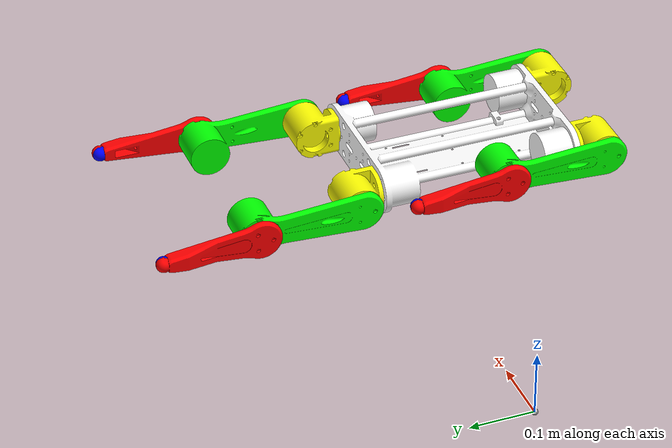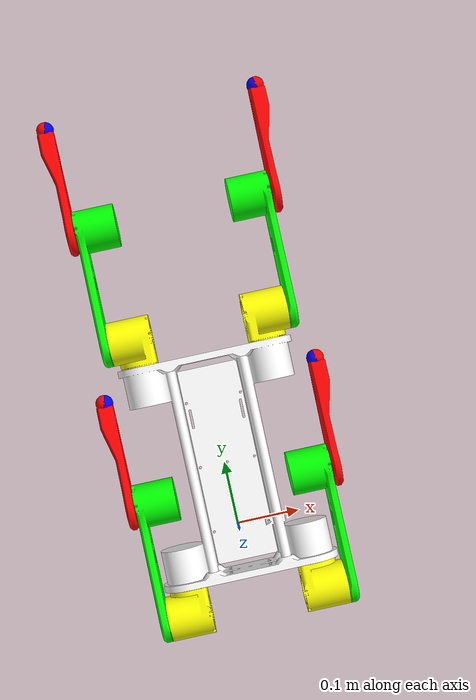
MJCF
<mujoco model="ElectroPup">
  <compiler angle="degree" meshdir="assets" texturedir="assets" autolimits="true"/>

  <option timestep="0.001"/>

  <statistic meansize="0.183574"/>

  <default>
    <geom type="mesh"/>
    <joint range="-45 45" armature="0.01090125" damping="0.0239" frictionloss="0.1334"/>

    <default class="abductor">
      <joint range="-45 45"/>
    </default>

    <default class="hip_front">
      <joint range="-1 1"/>
    </default>

    <default class="hip_rear">
      <joint range="-1 1"/>
    </default>

    <default class="knee">
      <joint range="-1 1" axis="0 -0.0775009 0.996992"/>
    </default>

    <default class="multi_mode_controlled_actuator">
      <general biastype="affine" gainprm="35 0 0 0 0 0 0 0 0 0" biasprm="0 -35 -0.65 0 0 0 0 0 0 0" ctrlrange="-2 2"/>
    </default>

    <default class="collision">
      <geom group="1"/>
      <default class="upper_right1">
        <geom rgba="0.768627 0.886275 0.952941 1"/>
      </default>
      <default class="upper_right2">
        <geom rgba="0 1 0 1"/>
      </default>
      <default class="abduction">
        <geom rgba="1 1 0 1"/>
      </default>
      <default class="foot">
        <geom rgba="0 0 1 1" solimp="0.015 1 0.031" friction="0.8 0.02 0.01"/>
      </default>
    </default>

  </default>

  <asset>
    <mesh file="body.stl"/>
    <mesh file="abduction.stl"/>
    <mesh file="upper-leg.stl"/>
    <mesh file="lower-leg.stl"/>
    <mesh file="foot.stl"/>
  </asset>

  <worldbody>
    <site name="origin"/>
    <body name="chassis">
      <freejoint/>
      <camera name="track" pos="0.846 -1.465 0.916" xyaxes="0.866 0.500 0.000 -0.171 0.296 0.940" mode="trackcom"/>
      <inertial pos="0 0 0" quat="0.000990813 0.68703 0.000216603 0.726628" mass="4.48878" diaginertia="0.071033 0.0619567 0.0192519"/>
      <geom pos="0 0 .5" rgba="1 1 1 1" mesh="body"/>

      <body name="front_left" pos="0.075 0.0075 0.5" quat="1 0 0 0">
        <inertial pos="0 0 0" quat="1 0 0 0" mass="0.639437" diaginertia="0.000866008 0.000565866 0.000479767"/>
        <joint class="abductor" name="abduction_front_left" axis="0 1 0"/>
        <geom class="abduction" pos="0 0 0" mesh="abduction"/>

        <body name="front_left_leg_assembly" pos="0.0345 -0.041 0" quat="1 0 0 0">
          <inertial pos="0 0 0" quat="1 0 0 0" mass="0.942155" diaginertia="0.00539403 0.00519403 0.000795298"/>
          <joint class="hip_front" name="hip_front_left" axis="1 0 0"/>
          <geom class="upper_right2" mesh="upper-leg"/>

          <body name="front_left_lower_leg" pos="0 0.140 0" quat="1 0 0 0">
            <inertial pos="0 0 0" quat="1 0 0 0" mass="0.169623" diaginertia="0.000828741 0.000813964 3.49901e-05"/>
            <joint class="knee" name="knee_front_left"  axis="1 0 0"/>
            <geom pos="0 0 0" rgba="1 0 0 1" mesh="lower-leg"/>
            <geom class="foot" pos="0.020 0.130 0" mesh="foot"/>
          </body>

        </body>
      </body>

      <body name="front_right" pos="-0.075 0.0075 0.5" quat="0 0 1 0">
        <inertial pos="0 0 0" quat="1 0 0 0" mass="0.639437" diaginertia="0.000866008 0.000565866 0.000479767"/>
        <joint class="abductor" name="abduction_front_right" axis="0 1 0"/>
        <geom class="abduction" pos="0 0 0" mesh="abduction"/>

        <body name="front_right_leg_assembly" pos="0.0345 -0.041 0" quat="1 0 0 0">
          <inertial pos="0 0 0" quat="1 0 0 0" mass="0.942155" diaginertia="0.00539403 0.00519403 0.000795298"/>
          <joint class="hip_front" name="hip_front_right" axis="1 0 0"/>
          <geom class="upper_right2" mesh="upper-leg"/>

          <body name="front_right_lower_leg" pos="0 0.140 0" quat="1 0 0 0">
            <inertial pos="0 0 0" quat="1 0 0 0" mass="0.169623" diaginertia="0.000828741 0.000813964 3.49901e-05"/>
            <joint class="knee" name="knee_front_right"  axis="1 0 0"/>
            <geom pos="0 0 0" rgba="1 0 0 1" mesh="lower-leg"/>
            <geom class="foot" pos="0.020 0.130 0" mesh="foot"/>
          </body>

        </body>
      </body>

      <body name="rear_left" pos="0.075 0.263 0.5" quat="0 1 0 0">
        <inertial pos="0 0 0" quat="1 0 0 0" mass="0.639437" diaginertia="0.000866008 0.000565866 0.000479767"/>
        <joint class="abductor" name="abduction_rear_left" axis="0 1 0"/>
        <geom class="abduction" pos="0 0 0" mesh="abduction"/>

        <body name="rear_left_leg_assembly" pos="0.0345 -0.041 0" quat="0 1 0 0">
          <inertial pos="0 0 0" quat="1 0 0 0" mass="0.942155" diaginertia="0.00539403 0.00519403 0.000795298"/>
          <joint class="hip_rear" name="hip_rear_left" axis="1 0 0"/>
          <geom class="upper_right2" mesh="upper-leg"/>

          <body name="rear_left_lower_leg" pos="0 0.140 0" quat="1 0 0 0">
            <inertial pos="0 0 0" quat="1 0 0 0" mass="0.169623" diaginertia="0.000828741 0.000813964 3.49901e-05"/>
            <joint class="knee" name="knee_rear_left"  axis="1 0 0"/>
            <geom pos="0 0 0" rgba="1 0 0 1" mesh="lower-leg"/>
            <geom class="foot" pos="0.020 0.130 0" mesh="foot"/>
          </body>

        </body>
      </body>

      <body name="rear_right" pos="-0.075 0.263 0.5" quat="0 0 0 1">
        <inertial pos="0 0 0" quat="1 0 0 0" mass="0.639437" diaginertia="0.000866008 0.000565866 0.000479767"/>
        <joint class="abductor" name="abduction_rear_right" axis="0 1 0"/>
        <geom class="abduction" pos="0 0 0" mesh="abduction"/>

        <body name="rear_right_leg_assembly" pos="0.0345 -0.041 0" quat="0 1 0 0">
          <inertial pos="0 0 0" quat="1 0 0 0" mass="0.942155" diaginertia="0.00539403 0.00519403 0.000795298"/>
          <joint class="hip_rear" name="hip_rear_right" axis="1 0 0"/>
          <geom class="upper_right2" mesh="upper-leg"/>

          <body name="rear_right_lower_leg" pos="0 0.140 0" quat="1 0 0 0">
            <inertial pos="0 0 0" quat="1 0 0 0" mass="0.169623" diaginertia="0.000828741 0.000813964 3.49901e-05"/>
            <joint class="knee" name="knee_rear_right"  axis="1 0 0"/>
            <geom pos="0 0 0" rgba="1 0 0 1" mesh="lower-leg"/>
            <geom class="foot" pos="0.020 0.130 0" mesh="foot"/>
          </body>

        </body>
      </body>

    </body>
  </worldbody>

  <actuator>
    <general name="abduction_front_left" class="multi_mode_controlled_actuator" joint="abduction_front_left"/>
    <general name="hip_front_left" class="multi_mode_controlled_actuator" joint="hip_front_left"/>
    <general name="knee_front_left" class="multi_mode_controlled_actuator" joint="knee_front_left"/>
    <general name="abduction_rear_left" class="multi_mode_controlled_actuator" joint="abduction_rear_left"/>
    <general name="hip_rear_left" class="multi_mode_controlled_actuator" joint="hip_rear_left"/>
    <general name="knee_rear_left" class="multi_mode_controlled_actuator" joint="knee_rear_left"/>
    <general name="abduction_front_right" class="multi_mode_controlled_actuator" joint="abduction_front_right"/>
    <general name="hip_front_right" class="multi_mode_controlled_actuator" joint="hip_front_right"/>
    <general name="knee_front_right" class="multi_mode_controlled_actuator" joint="knee_front_right"/>
    <general name="abduction_rear_right" class="multi_mode_controlled_actuator" joint="abduction_rear_right"/>
    <general name="hip_rear_right" class="multi_mode_controlled_actuator" joint="hip_rear_right"/>
    <general name="knee_rear_right" class="multi_mode_controlled_actuator" joint="knee_rear_right"/>
  </actuator>

  <sensor>
    <jointpos joint="abduction_front_left" name="abduction_front_left_pos"/>
    <jointpos joint="hip_front_left" name="hip_front_left_pos"/>
    <jointpos joint="knee_front_left" name="knee_front_left_pos"/>
    <jointpos joint="abduction_rear_left" name="abduction_rear_left_pos"/>
    <jointpos joint="hip_rear_left" name="hip_rear_left_pos"/>
    <jointpos joint="knee_rear_left" name="knee_rear_left_pos"/>
    <jointpos joint="abduction_front_right" name="abduction_front_right_pos"/>
    <jointpos joint="hip_front_right" name="hip_front_right_pos"/>
    <jointpos joint="knee_front_right" name="knee_front_right_pos"/>
    <jointpos joint="abduction_rear_right" name="abduction_rear_right_pos"/>
    <jointpos joint="hip_rear_right" name="hip_rear_right_pos"/>
    <jointpos joint="knee_rear_right" name="knee_rear_right_pos"/>
    <jointvel joint="abduction_front_left" name="abduction_front_left_vel"/>
    <jointvel joint="hip_front_left" name="hip_front_left_vel"/>
    <jointvel joint="knee_front_left" name="knee_front_left_vel"/>
    <jointvel joint="abduction_rear_left" name="abduction_rear_left_vel"/>
    <jointvel joint="hip_rear_left" name="hip_rear_left_vel"/>
    <jointvel joint="knee_rear_left" name="knee_rear_left_vel"/>
    <jointvel joint="abduction_front_right" name="abduction_front_right_vel"/>
    <jointvel joint="hip_front_right" name="hip_front_right_vel"/>
    <jointvel joint="knee_front_right" name="knee_front_right_vel"/>
    <jointvel joint="abduction_rear_right" name="abduction_rear_right_vel"/>
    <jointvel joint="hip_rear_right" name="hip_rear_right_vel"/>
    <jointvel joint="knee_rear_right" name="knee_rear_right_vel"/>
    <gyro site="origin" name="gyro"/>
    <accelerometer site="origin" name="accelerometer"/>
    <framequat objtype="site" objname="origin" name="orientation"/>
  </sensor>

  <keyframe>
    <key name="standing"
      qpos="0 0 0.21 1 0 0 0 0 0.5 1.0 0 0.5 1.0 0 0.5 1.0 0 0.5 1.0"
      ctrl="0 0.5 1.0 0 0.5 1.0 0 0.5 1.0 0 0.5 1.0"/>
  </keyframe>
</mujoco>
